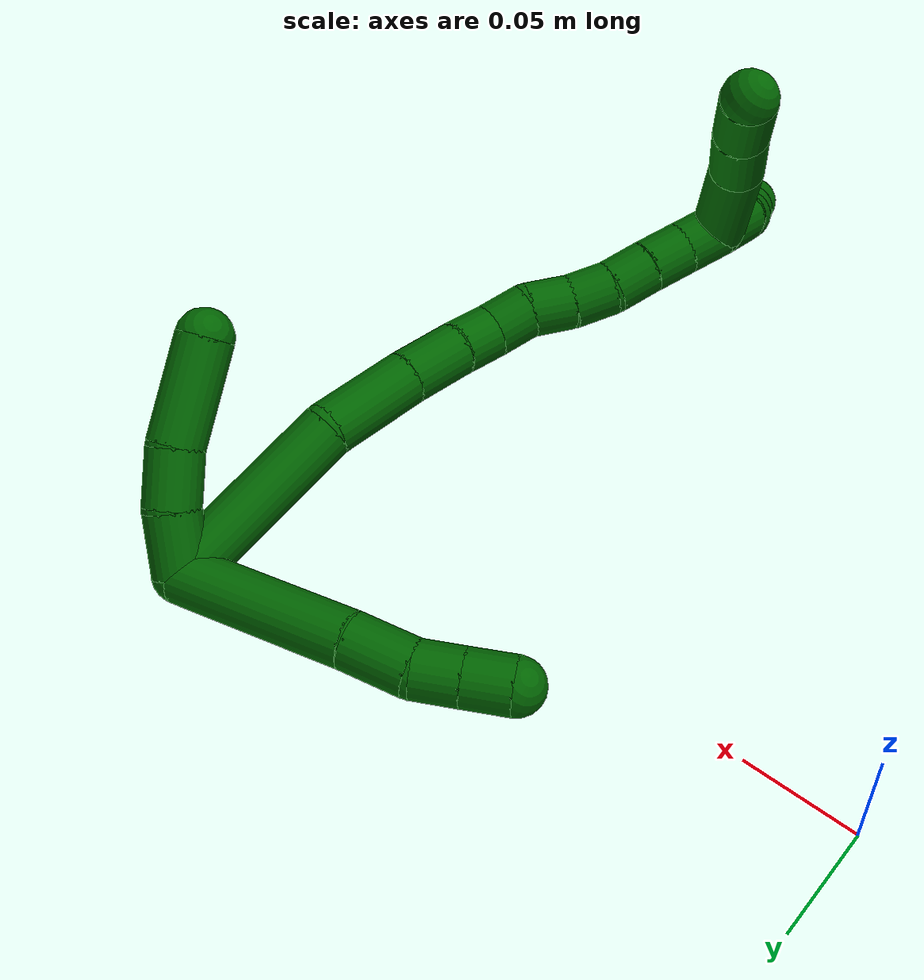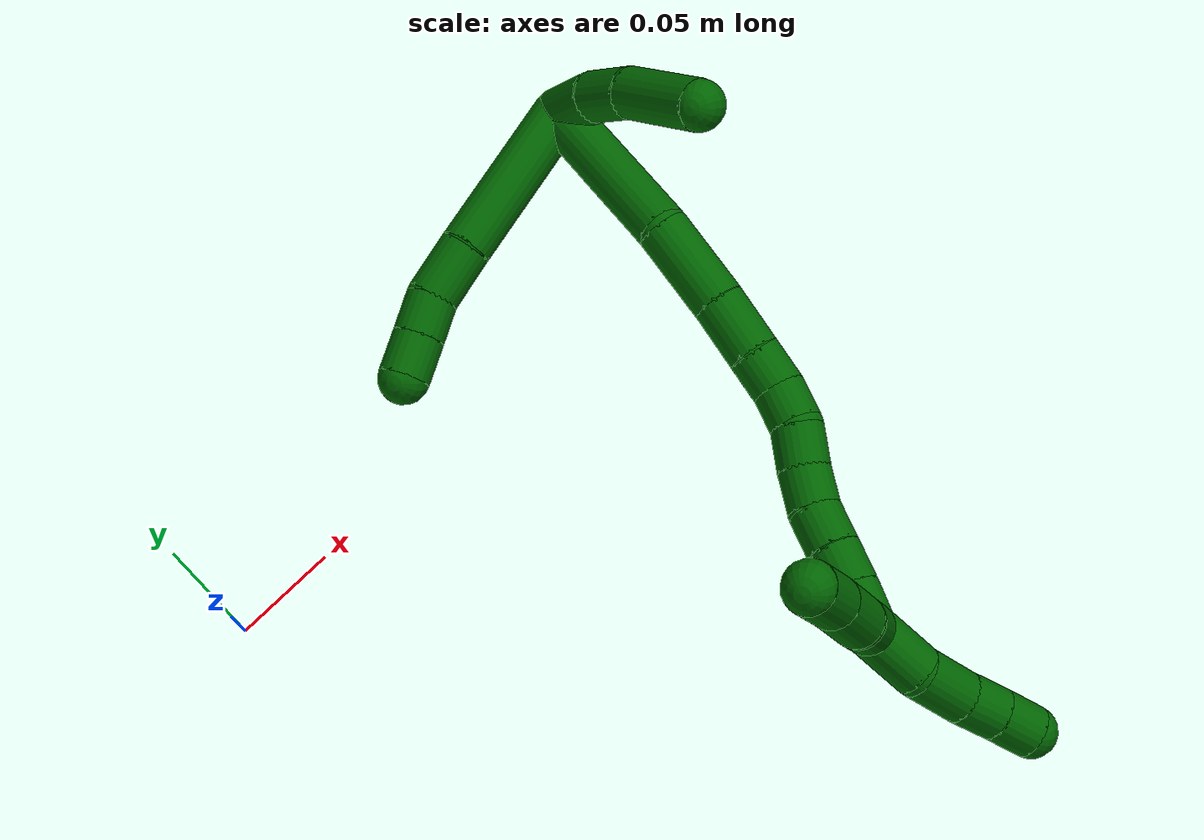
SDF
<sdf version="1.7">
 <world name="default">
  <model name="6">
   <static>0</static>
   <link name="6">
    <collision name="collision-cylinder-e_1_2_8">
     <pose>0.033666 -0.006346 -0.020849 2.84612 0.996291 2.60743</pose>
     <geometry><cylinder><radius>0.0125</radius><length>0.080209</length></cylinder></geometry>
     <surface>
      <friction><ode><mu>1.16</mu><mu2>1.16</mu2><slip1>0</slip1><slip2>0</slip2></ode></friction>
      <contact><ode><kp>1e+06</kp><kd>1</kd><max_vel>0</max_vel><min_depth>0.001</min_depth></ode></contact>
     </surface>
    </collision>
    <visual name="visual-cylinder-e_1_2_8">
     <pose>0.033666 -0.006346 -0.020849 2.84612 0.996291 2.60743</pose>
     <geometry><cylinder><radius>0.0125</radius><length>0.080209</length></cylinder></geometry>
     <material><ambient>0 0.392157 0.003922 1</ambient></material>
    </visual>
    <collision name="collision-cylinder-e_2_8_9">
     <pose>0.079995 -0.015054 -0.047979 2.78192 1.08349 2.55484</pose>
     <geometry><cylinder><radius>0.0125</radius><length>0.028661</length></cylinder></geometry>
     <surface>
      <friction><ode><mu>1.16</mu><mu2>1.16</mu2><slip1>0</slip1><slip2>0</slip2></ode></friction>
      <contact><ode><kp>1e+06</kp><kd>1</kd><max_vel>0</max_vel><min_depth>0.001</min_depth></ode></contact>
     </surface>
    </collision>
    <visual name="visual-cylinder-e_2_8_9">
     <pose>0.079995 -0.015054 -0.047979 2.78192 1.08349 2.55484</pose>
     <geometry><cylinder><radius>0.0125</radius><length>0.028661</length></cylinder></geometry>
     <material><ambient>0 0.392157 0.003922 1</ambient></material>
    </visual>
    <collision name="collision-cylinder-e_3_9_10">
     <pose>0.10065 -0.021587 -0.05881 2.39964 0.91319 1.80204</pose>
     <geometry><cylinder><radius>0.0125</radius><length>0.020198</length></cylinder></geometry>
     <surface>
      <friction><ode><mu>1.16</mu><mu2>1.16</mu2><slip1>0</slip1><slip2>0</slip2></ode></friction>
      <contact><ode><kp>1e+06</kp><kd>1</kd><max_vel>0</max_vel><min_depth>0.001</min_depth></ode></contact>
     </surface>
    </collision>
    <visual name="visual-cylinder-e_3_9_10">
     <pose>0.10065 -0.021587 -0.05881 2.39964 0.91319 1.80204</pose>
     <geometry><cylinder><radius>0.0125</radius><length>0.020198</length></cylinder></geometry>
     <material><ambient>0 0.392157 0.003922 1</ambient></material>
    </visual>
    <collision name="collision-cylinder-e_4_10_6">
     <pose>0.116858 -0.030015 -0.068252 2.42555 0.90258 1.82673</pose>
     <geometry><cylinder><radius>0.0125</radius><length>0.020932</length></cylinder></geometry>
     <surface>
      <friction><ode><mu>1.16</mu><mu2>1.16</mu2><slip1>0</slip1><slip2>0</slip2></ode></friction>
      <contact><ode><kp>1e+06</kp><kd>1</kd><max_vel>0</max_vel><min_depth>0.001</min_depth></ode></contact>
     </surface>
    </collision>
    <visual name="visual-cylinder-e_4_10_6">
     <pose>0.116858 -0.030015 -0.068252 2.42555 0.90258 1.82673</pose>
     <geometry><cylinder><radius>0.0125</radius><length>0.020932</length></cylinder></geometry>
     <material><ambient>0 0.392157 0.003922 1</ambient></material>
    </visual>
    <collision name="collision-cylinder-e_1_2_11">
     <pose>-0.010908 -0.00552 -0.006794 2.45927 -0.89449 -1.8672</pose>
     <geometry><cylinder><radius>0.0125</radius><length>0.027972</length></cylinder></geometry>
     <surface>
      <friction><ode><mu>1.16</mu><mu2>1.16</mu2><slip1>0</slip1><slip2>0</slip2></ode></friction>
      <contact><ode><kp>1e+06</kp><kd>1</kd><max_vel>0</max_vel><min_depth>0.001</min_depth></ode></contact>
     </surface>
    </collision>
    <visual name="visual-cylinder-e_1_2_11">
     <pose>-0.010908 -0.00552 -0.006794 2.45927 -0.89449 -1.8672</pose>
     <geometry><cylinder><radius>0.0125</radius><length>0.027972</length></cylinder></geometry>
     <material><ambient>0 0.392157 0.003922 1</ambient></material>
    </visual>
    <collision name="collision-cylinder-e_2_11_12">
     <pose>-0.030252 -0.018377 -0.019891 2.28056 -0.717334 -1.3692</pose>
     <geometry><cylinder><radius>0.0125</radius><length>0.025668</length></cylinder></geometry>
     <surface>
      <friction><ode><mu>1.16</mu><mu2>1.16</mu2><slip1>0</slip1><slip2>0</slip2></ode></friction>
      <contact><ode><kp>1e+06</kp><kd>1</kd><max_vel>0</max_vel><min_depth>0.001</min_depth></ode></contact>
     </surface>
    </collision>
    <visual name="visual-cylinder-e_2_11_12">
     <pose>-0.030252 -0.018377 -0.019891 2.28056 -0.717334 -1.3692</pose>
     <geometry><cylinder><radius>0.0125</radius><length>0.025668</length></cylinder></geometry>
     <material><ambient>0 0.392157 0.003922 1</ambient></material>
    </visual>
    <collision name="collision-cylinder-e_3_12_5">
     <pose>-0.050478 -0.042039 -0.037672 2.1836 -0.533528 -0.968788</pose>
     <geometry><cylinder><radius>0.0125</radius><length>0.046359</length></cylinder></geometry>
     <surface>
      <friction><ode><mu>1.16</mu><mu2>1.16</mu2><slip1>0</slip1><slip2>0</slip2></ode></friction>
      <contact><ode><kp>1e+06</kp><kd>1</kd><max_vel>0</max_vel><min_depth>0.001</min_depth></ode></contact>
     </surface>
    </collision>
    <visual name="visual-cylinder-e_3_12_5">
     <pose>-0.050478 -0.042039 -0.037672 2.1836 -0.533528 -0.968788</pose>
     <geometry><cylinder><radius>0.0125</radius><length>0.046359</length></cylinder></geometry>
     <material><ambient>0 0.392157 0.003922 1</ambient></material>
    </visual>
    <collision name="collision-cylinder-e_1_2_13">
     <pose>-0.001005 -0.039496 -0.016847 1.97397 -0.023398 -0.035416</pose>
     <geometry><cylinder><radius>0.0125</radius><length>0.085901</length></cylinder></geometry>
     <surface>
      <friction><ode><mu>1.16</mu><mu2>1.16</mu2><slip1>0</slip1><slip2>0</slip2></ode></friction>
      <contact><ode><kp>1e+06</kp><kd>1</kd><max_vel>0</max_vel><min_depth>0.001</min_depth></ode></contact>
     </surface>
    </collision>
    <visual name="visual-cylinder-e_1_2_13">
     <pose>-0.001005 -0.039496 -0.016847 1.97397 -0.023398 -0.035416</pose>
     <geometry><cylinder><radius>0.0125</radius><length>0.085901</length></cylinder></geometry>
     <material><ambient>0 0.392157 0.003922 1</ambient></material>
    </visual>
    <collision name="collision-cylinder-e_2_13_14">
     <pose>0.001157 -0.100461 -0.037219 1.73355 0.144539 0.170095</pose>
     <geometry><cylinder><radius>0.0125</radius><length>0.043972</length></cylinder></geometry>
     <surface>
      <friction><ode><mu>1.16</mu><mu2>1.16</mu2><slip1>0</slip1><slip2>0</slip2></ode></friction>
      <contact><ode><kp>1e+06</kp><kd>1</kd><max_vel>0</max_vel><min_depth>0.001</min_depth></ode></contact>
     </surface>
    </collision>
    <visual name="visual-cylinder-e_2_13_14">
     <pose>0.001157 -0.100461 -0.037219 1.73355 0.144539 0.170095</pose>
     <geometry><cylinder><radius>0.0125</radius><length>0.043972</length></cylinder></geometry>
     <material><ambient>0 0.392157 0.003922 1</ambient></material>
    </visual>
    <collision name="collision-cylinder-e_3_14_15">
     <pose>0.00717 -0.135992 -0.042871 1.72093 0.197525 0.229391</pose>
     <geometry><cylinder><radius>0.0125</radius><length>0.029008</length></cylinder></geometry>
     <surface>
      <friction><ode><mu>1.16</mu><mu2>1.16</mu2><slip1>0</slip1><slip2>0</slip2></ode></friction>
      <contact><ode><kp>1e+06</kp><kd>1</kd><max_vel>0</max_vel><min_depth>0.001</min_depth></ode></contact>
     </surface>
    </collision>
    <visual name="visual-cylinder-e_3_14_15">
     <pose>0.00717 -0.135992 -0.042871 1.72093 0.197525 0.229391</pose>
     <geometry><cylinder><radius>0.0125</radius><length>0.029008</length></cylinder></geometry>
     <material><ambient>0 0.392157 0.003922 1</ambient></material>
    </visual>
    <collision name="collision-cylinder-e_4_15_16">
     <pose>0.012257 -0.159838 -0.045728 1.64518 0.224464 0.241651</pose>
     <geometry><cylinder><radius>0.0125</radius><length>0.020127</length></cylinder></geometry>
     <surface>
      <friction><ode><mu>1.16</mu><mu2>1.16</mu2><slip1>0</slip1><slip2>0</slip2></ode></friction>
      <contact><ode><kp>1e+06</kp><kd>1</kd><max_vel>0</max_vel><min_depth>0.001</min_depth></ode></contact>
     </surface>
    </collision>
    <visual name="visual-cylinder-e_4_15_16">
     <pose>0.012257 -0.159838 -0.045728 1.64518 0.224464 0.241651</pose>
     <geometry><cylinder><radius>0.0125</radius><length>0.020127</length></cylinder></geometry>
     <material><ambient>0 0.392157 0.003922 1</ambient></material>
    </visual>
    <collision name="collision-cylinder-e_5_16_17">
     <pose>0.016836 -0.178515 -0.050528 2.0001 0.234773 0.363317</pose>
     <geometry><cylinder><radius>0.0125</radius><length>0.020111</length></cylinder></geometry>
     <surface>
      <friction><ode><mu>1.16</mu><mu2>1.16</mu2><slip1>0</slip1><slip2>0</slip2></ode></friction>
      <contact><ode><kp>1e+06</kp><kd>1</kd><max_vel>0</max_vel><min_depth>0.001</min_depth></ode></contact>
     </surface>
    </collision>
    <visual name="visual-cylinder-e_5_16_17">
     <pose>0.016836 -0.178515 -0.050528 2.0001 0.234773 0.363317</pose>
     <geometry><cylinder><radius>0.0125</radius><length>0.020111</length></cylinder></geometry>
     <material><ambient>0 0.392157 0.003922 1</ambient></material>
    </visual>
    <collision name="collision-cylinder-e_6_17_18">
     <pose>0.024649 -0.195445 -0.058126 1.98432 0.557605 0.826042</pose>
     <geometry><cylinder><radius>0.0125</radius><length>0.020689</length></cylinder></geometry>
     <surface>
      <friction><ode><mu>1.16</mu><mu2>1.16</mu2><slip1>0</slip1><slip2>0</slip2></ode></friction>
      <contact><ode><kp>1e+06</kp><kd>1</kd><max_vel>0</max_vel><min_depth>0.001</min_depth></ode></contact>
     </surface>
    </collision>
    <visual name="visual-cylinder-e_6_17_18">
     <pose>0.024649 -0.195445 -0.058126 1.98432 0.557605 0.826042</pose>
     <geometry><cylinder><radius>0.0125</radius><length>0.020689</length></cylinder></geometry>
     <material><ambient>0 0.392157 0.003922 1</ambient></material>
    </visual>
    <collision name="collision-cylinder-e_7_18_19">
     <pose>0.034216 -0.21153 -0.065984 2.06458 0.421127 0.687155</pose>
     <geometry><cylinder><radius>0.0125</radius><length>0.020026</length></cylinder></geometry>
     <surface>
      <friction><ode><mu>1.16</mu><mu2>1.16</mu2><slip1>0</slip1><slip2>0</slip2></ode></friction>
      <contact><ode><kp>1e+06</kp><kd>1</kd><max_vel>0</max_vel><min_depth>0.001</min_depth></ode></contact>
     </surface>
    </collision>
    <visual name="visual-cylinder-e_7_18_19">
     <pose>0.034216 -0.21153 -0.065984 2.06458 0.421127 0.687155</pose>
     <geometry><cylinder><radius>0.0125</radius><length>0.020026</length></cylinder></geometry>
     <material><ambient>0 0.392157 0.003922 1</ambient></material>
    </visual>
    <collision name="collision-cylinder-e_8_19_20">
     <pose>0.040734 -0.228528 -0.074251 1.98499 0.243018 0.36987</pose>
     <geometry><cylinder><radius>0.0125</radius><length>0.02015</length></cylinder></geometry>
     <surface>
      <friction><ode><mu>1.16</mu><mu2>1.16</mu2><slip1>0</slip1><slip2>0</slip2></ode></friction>
      <contact><ode><kp>1e+06</kp><kd>1</kd><max_vel>0</max_vel><min_depth>0.001</min_depth></ode></contact>
     </surface>
    </collision>
    <visual name="visual-cylinder-e_8_19_20">
     <pose>0.040734 -0.228528 -0.074251 1.98499 0.243018 0.36987</pose>
     <geometry><cylinder><radius>0.0125</radius><length>0.02015</length></cylinder></geometry>
     <material><ambient>0 0.392157 0.003922 1</ambient></material>
    </visual>
    <collision name="collision-cylinder-e_9_20_21">
     <pose>0.045808 -0.246459 -0.081706 1.9444 0.268127 0.390439</pose>
     <geometry><cylinder><radius>0.0125</radius><length>0.020003</length></cylinder></geometry>
     <surface>
      <friction><ode><mu>1.16</mu><mu2>1.16</mu2><slip1>0</slip1><slip2>0</slip2></ode></friction>
      <contact><ode><kp>1e+06</kp><kd>1</kd><max_vel>0</max_vel><min_depth>0.001</min_depth></ode></contact>
     </surface>
    </collision>
    <visual name="visual-cylinder-e_9_20_21">
     <pose>0.045808 -0.246459 -0.081706 1.9444 0.268127 0.390439</pose>
     <geometry><cylinder><radius>0.0125</radius><length>0.020003</length></cylinder></geometry>
     <material><ambient>0 0.392157 0.003922 1</ambient></material>
    </visual>
    <collision name="collision-cylinder-e_10_21_1">
     <pose>0.051218 -0.264106 -0.089392 2.01885 0.279484 0.440099</pose>
     <geometry><cylinder><radius>0.0125</radius><length>0.020012</length></cylinder></geometry>
     <surface>
      <friction><ode><mu>1.16</mu><mu2>1.16</mu2><slip1>0</slip1><slip2>0</slip2></ode></friction>
      <contact><ode><kp>1e+06</kp><kd>1</kd><max_vel>0</max_vel><min_depth>0.001</min_depth></ode></contact>
     </surface>
    </collision>
    <visual name="visual-cylinder-e_10_21_1">
     <pose>0.051218 -0.264106 -0.089392 2.01885 0.279484 0.440099</pose>
     <geometry><cylinder><radius>0.0125</radius><length>0.020012</length></cylinder></geometry>
     <material><ambient>0 0.392157 0.003922 1</ambient></material>
    </visual>
    <collision name="collision-cylinder-e_1_1_22">
     <pose>0.055777 -0.287334 -0.088101 1.21215 0.115206 0.079894</pose>
     <geometry><cylinder><radius>0.0125</radius><length>0.031306</length></cylinder></geometry>
     <surface>
      <friction><ode><mu>1.16</mu><mu2>1.16</mu2><slip1>0</slip1><slip2>0</slip2></ode></friction>
      <contact><ode><kp>1e+06</kp><kd>1</kd><max_vel>0</max_vel><min_depth>0.001</min_depth></ode></contact>
     </surface>
    </collision>
    <visual name="visual-cylinder-e_1_1_22">
     <pose>0.055777 -0.287334 -0.088101 1.21215 0.115206 0.079894</pose>
     <geometry><cylinder><radius>0.0125</radius><length>0.031306</length></cylinder></geometry>
     <material><ambient>0 0.392157 0.003922 1</ambient></material>
    </visual>
    <collision name="collision-cylinder-e_2_22_23">
     <pose>0.058253 -0.313133 -0.074457 0.941336 0.048622 0.024743</pose>
     <geometry><cylinder><radius>0.0125</radius><length>0.027842</length></cylinder></geometry>
     <surface>
      <friction><ode><mu>1.16</mu><mu2>1.16</mu2><slip1>0</slip1><slip2>0</slip2></ode></friction>
      <contact><ode><kp>1e+06</kp><kd>1</kd><max_vel>0</max_vel><min_depth>0.001</min_depth></ode></contact>
     </surface>
    </collision>
    <visual name="visual-cylinder-e_2_22_23">
     <pose>0.058253 -0.313133 -0.074457 0.941336 0.048622 0.024743</pose>
     <geometry><cylinder><radius>0.0125</radius><length>0.027842</length></cylinder></geometry>
     <material><ambient>0 0.392157 0.003922 1</ambient></material>
    </visual>
    <collision name="collision-cylinder-e_3_23_24">
     <pose>0.058352 -0.332953 -0.06076 0.999797 -0.056575 -0.030905</pose>
     <geometry><cylinder><radius>0.0125</radius><length>0.020429</length></cylinder></geometry>
     <surface>
      <friction><ode><mu>1.16</mu><mu2>1.16</mu2><slip1>0</slip1><slip2>0</slip2></ode></friction>
      <contact><ode><kp>1e+06</kp><kd>1</kd><max_vel>0</max_vel><min_depth>0.001</min_depth></ode></contact>
     </surface>
    </collision>
    <visual name="visual-cylinder-e_3_23_24">
     <pose>0.058352 -0.332953 -0.06076 0.999797 -0.056575 -0.030905</pose>
     <geometry><cylinder><radius>0.0125</radius><length>0.020429</length></cylinder></geometry>
     <material><ambient>0 0.392157 0.003922 1</ambient></material>
    </visual>
    <collision name="collision-cylinder-e_4_24_4">
     <pose>0.057309 -0.350358 -0.05013 1.04521 -0.045598 -0.026269</pose>
     <geometry><cylinder><radius>0.0125</radius><length>0.020424</length></cylinder></geometry>
     <surface>
      <friction><ode><mu>1.16</mu><mu2>1.16</mu2><slip1>0</slip1><slip2>0</slip2></ode></friction>
      <contact><ode><kp>1e+06</kp><kd>1</kd><max_vel>0</max_vel><min_depth>0.001</min_depth></ode></contact>
     </surface>
    </collision>
    <visual name="visual-cylinder-e_4_24_4">
     <pose>0.057309 -0.350358 -0.05013 1.04521 -0.045598 -0.026269</pose>
     <geometry><cylinder><radius>0.0125</radius><length>0.020424</length></cylinder></geometry>
     <material><ambient>0 0.392157 0.003922 1</ambient></material>
    </visual>
    <collision name="collision-cylinder-e_1_1_25">
     <pose>0.047073 -0.26975 -0.112882 -2.98633 -0.339377 2.28925</pose>
     <geometry><cylinder><radius>0.0125</radius><length>0.041482</length></cylinder></geometry>
     <surface>
      <friction><ode><mu>1.16</mu><mu2>1.16</mu2><slip1>0</slip1><slip2>0</slip2></ode></friction>
      <contact><ode><kp>1e+06</kp><kd>1</kd><max_vel>0</max_vel><min_depth>0.001</min_depth></ode></contact>
     </surface>
    </collision>
    <visual name="visual-cylinder-e_1_1_25">
     <pose>0.047073 -0.26975 -0.112882 -2.98633 -0.339377 2.28925</pose>
     <geometry><cylinder><radius>0.0125</radius><length>0.041482</length></cylinder></geometry>
     <material><ambient>0 0.392157 0.003922 1</ambient></material>
    </visual>
    <collision name="collision-cylinder-e_2_25_26">
     <pose>0.035572 -0.259989 -0.145645 -2.67697 -0.296661 1.12667</pose>
     <geometry><cylinder><radius>0.0125</radius><length>0.031443</length></cylinder></geometry>
     <surface>
      <friction><ode><mu>1.16</mu><mu2>1.16</mu2><slip1>0</slip1><slip2>0</slip2></ode></friction>
      <contact><ode><kp>1e+06</kp><kd>1</kd><max_vel>0</max_vel><min_depth>0.001</min_depth></ode></contact>
     </surface>
    </collision>
    <visual name="visual-cylinder-e_2_25_26">
     <pose>0.035572 -0.259989 -0.145645 -2.67697 -0.296661 1.12667</pose>
     <geometry><cylinder><radius>0.0125</radius><length>0.031443</length></cylinder></geometry>
     <material><ambient>0 0.392157 0.003922 1</ambient></material>
    </visual>
    <collision name="collision-cylinder-e_3_26_3">
     <pose>0.027518 -0.247827 -0.170997 -2.71421 -0.25833 1.07871</pose>
     <geometry><cylinder><radius>0.0125</radius><length>0.027075</length></cylinder></geometry>
     <surface>
      <friction><ode><mu>1.16</mu><mu2>1.16</mu2><slip1>0</slip1><slip2>0</slip2></ode></friction>
      <contact><ode><kp>1e+06</kp><kd>1</kd><max_vel>0</max_vel><min_depth>0.001</min_depth></ode></contact>
     </surface>
    </collision>
    <visual name="visual-cylinder-e_3_26_3">
     <pose>0.027518 -0.247827 -0.170997 -2.71421 -0.25833 1.07871</pose>
     <geometry><cylinder><radius>0.0125</radius><length>0.027075</length></cylinder></geometry>
     <material><ambient>0 0.392157 0.003922 1</ambient></material>
    </visual>
    <collision name="collision-sphere-3">
     <pose>0.02406 -0.242402 -0.182908 0 -0 0</pose>
     <geometry><sphere><radius>0.0125</radius></sphere></geometry>
     <surface>
      <friction><ode><mu>1.16</mu><mu2>1.16</mu2><slip1>0</slip1><slip2>0</slip2></ode></friction>
      <contact><ode><kp>1e+06</kp><kd>1</kd><max_vel>0</max_vel><min_depth>0.001</min_depth></ode></contact>
     </surface>
    </collision>
    <visual name="visual-sphere-3">
     <pose>0.02406 -0.242402 -0.182908 0 -0 0</pose>
     <geometry><sphere><radius>0.0125</radius></sphere></geometry>
     <material><ambient>0 0.392157 0.003922 1</ambient></material>
    </visual>
    <collision name="collision-sphere-26">
     <pose>0.030977 -0.253252 -0.159086 0 -0 0</pose>
     <geometry><sphere><radius>0.0125</radius></sphere></geometry>
     <surface>
      <friction><ode><mu>1.16</mu><mu2>1.16</mu2><slip1>0</slip1><slip2>0</slip2></ode></friction>
      <contact><ode><kp>1e+06</kp><kd>1</kd><max_vel>0</max_vel><min_depth>0.001</min_depth></ode></contact>
     </surface>
    </collision>
    <visual name="visual-sphere-26">
     <pose>0.030977 -0.253252 -0.159086 0 -0 0</pose>
     <geometry><sphere><radius>0.0125</radius></sphere></geometry>
     <material><ambient>0 0.392157 0.003922 1</ambient></material>
    </visual>
    <collision name="collision-sphere-25">
     <pose>0.040168 -0.266726 -0.132205 0 -0 0</pose>
     <geometry><sphere><radius>0.0125</radius></sphere></geometry>
     <surface>
      <friction><ode><mu>1.16</mu><mu2>1.16</mu2><slip1>0</slip1><slip2>0</slip2></ode></friction>
      <contact><ode><kp>1e+06</kp><kd>1</kd><max_vel>0</max_vel><min_depth>0.001</min_depth></ode></contact>
     </surface>
    </collision>
    <visual name="visual-sphere-25">
     <pose>0.040168 -0.266726 -0.132205 0 -0 0</pose>
     <geometry><sphere><radius>0.0125</radius></sphere></geometry>
     <material><ambient>0 0.392157 0.003922 1</ambient></material>
    </visual>
    <collision name="collision-sphere-4">
     <pose>0.056843 -0.359182 -0.045012 0 -0 0</pose>
     <geometry><sphere><radius>0.0125</radius></sphere></geometry>
     <surface>
      <friction><ode><mu>1.16</mu><mu2>1.16</mu2><slip1>0</slip1><slip2>0</slip2></ode></friction>
      <contact><ode><kp>1e+06</kp><kd>1</kd><max_vel>0</max_vel><min_depth>0.001</min_depth></ode></contact>
     </surface>
    </collision>
    <visual name="visual-sphere-4">
     <pose>0.056843 -0.359182 -0.045012 0 -0 0</pose>
     <geometry><sphere><radius>0.0125</radius></sphere></geometry>
     <material><ambient>0 0.392157 0.003922 1</ambient></material>
    </visual>
    <collision name="collision-sphere-24">
     <pose>0.057774 -0.341533 -0.055248 0 -0 0</pose>
     <geometry><sphere><radius>0.0125</radius></sphere></geometry>
     <surface>
      <friction><ode><mu>1.16</mu><mu2>1.16</mu2><slip1>0</slip1><slip2>0</slip2></ode></friction>
      <contact><ode><kp>1e+06</kp><kd>1</kd><max_vel>0</max_vel><min_depth>0.001</min_depth></ode></contact>
     </surface>
    </collision>
    <visual name="visual-sphere-24">
     <pose>0.057774 -0.341533 -0.055248 0 -0 0</pose>
     <geometry><sphere><radius>0.0125</radius></sphere></geometry>
     <material><ambient>0 0.392157 0.003922 1</ambient></material>
    </visual>
    <collision name="collision-sphere-23">
     <pose>0.05893 -0.324373 -0.066272 0 -0 0</pose>
     <geometry><sphere><radius>0.0125</radius></sphere></geometry>
     <surface>
      <friction><ode><mu>1.16</mu><mu2>1.16</mu2><slip1>0</slip1><slip2>0</slip2></ode></friction>
      <contact><ode><kp>1e+06</kp><kd>1</kd><max_vel>0</max_vel><min_depth>0.001</min_depth></ode></contact>
     </surface>
    </collision>
    <visual name="visual-sphere-23">
     <pose>0.05893 -0.324373 -0.066272 0 -0 0</pose>
     <geometry><sphere><radius>0.0125</radius></sphere></geometry>
     <material><ambient>0 0.392157 0.003922 1</ambient></material>
    </visual>
    <collision name="collision-sphere-22">
     <pose>0.057576 -0.301894 -0.082643 0 -0 0</pose>
     <geometry><sphere><radius>0.0125</radius></sphere></geometry>
     <surface>
      <friction><ode><mu>1.16</mu><mu2>1.16</mu2><slip1>0</slip1><slip2>0</slip2></ode></friction>
      <contact><ode><kp>1e+06</kp><kd>1</kd><max_vel>0</max_vel><min_depth>0.001</min_depth></ode></contact>
     </surface>
    </collision>
    <visual name="visual-sphere-22">
     <pose>0.057576 -0.301894 -0.082643 0 -0 0</pose>
     <geometry><sphere><radius>0.0125</radius></sphere></geometry>
     <material><ambient>0 0.392157 0.003922 1</ambient></material>
    </visual>
    <collision name="collision-sphere-1">
     <pose>0.053978 -0.272775 -0.093559 0 -0 0</pose>
     <geometry><sphere><radius>0.0125</radius></sphere></geometry>
     <surface>
      <friction><ode><mu>1.16</mu><mu2>1.16</mu2><slip1>0</slip1><slip2>0</slip2></ode></friction>
      <contact><ode><kp>1e+06</kp><kd>1</kd><max_vel>0</max_vel><min_depth>0.001</min_depth></ode></contact>
     </surface>
    </collision>
    <visual name="visual-sphere-1">
     <pose>0.053978 -0.272775 -0.093559 0 -0 0</pose>
     <geometry><sphere><radius>0.0125</radius></sphere></geometry>
     <material><ambient>0 0.392157 0.003922 1</ambient></material>
    </visual>
    <collision name="collision-sphere-21">
     <pose>0.048457 -0.255438 -0.085226 0 -0 0</pose>
     <geometry><sphere><radius>0.0125</radius></sphere></geometry>
     <surface>
      <friction><ode><mu>1.16</mu><mu2>1.16</mu2><slip1>0</slip1><slip2>0</slip2></ode></friction>
      <contact><ode><kp>1e+06</kp><kd>1</kd><max_vel>0</max_vel><min_depth>0.001</min_depth></ode></contact>
     </surface>
    </collision>
    <visual name="visual-sphere-21">
     <pose>0.048457 -0.255438 -0.085226 0 -0 0</pose>
     <geometry><sphere><radius>0.0125</radius></sphere></geometry>
     <material><ambient>0 0.392157 0.003922 1</ambient></material>
    </visual>
    <collision name="collision-sphere-11">
     <pose>-0.021815 -0.011041 -0.013588 0 -0 0</pose>
     <geometry><sphere><radius>0.0125</radius></sphere></geometry>
     <surface>
      <friction><ode><mu>1.16</mu><mu2>1.16</mu2><slip1>0</slip1><slip2>0</slip2></ode></friction>
      <contact><ode><kp>1e+06</kp><kd>1</kd><max_vel>0</max_vel><min_depth>0.001</min_depth></ode></contact>
     </surface>
    </collision>
    <visual name="visual-sphere-11">
     <pose>-0.021815 -0.011041 -0.013588 0 -0 0</pose>
     <geometry><sphere><radius>0.0125</radius></sphere></geometry>
     <material><ambient>0 0.392157 0.003922 1</ambient></material>
    </visual>
    <collision name="collision-sphere-6">
     <pose>0.125073 -0.034271 -0.073144 0 -0 0</pose>
     <geometry><sphere><radius>0.0125</radius></sphere></geometry>
     <surface>
      <friction><ode><mu>1.16</mu><mu2>1.16</mu2><slip1>0</slip1><slip2>0</slip2></ode></friction>
      <contact><ode><kp>1e+06</kp><kd>1</kd><max_vel>0</max_vel><min_depth>0.001</min_depth></ode></contact>
     </surface>
    </collision>
    <visual name="visual-sphere-6">
     <pose>0.125073 -0.034271 -0.073144 0 -0 0</pose>
     <geometry><sphere><radius>0.0125</radius></sphere></geometry>
     <material><ambient>0 0.392157 0.003922 1</ambient></material>
    </visual>
    <collision name="collision-sphere-10">
     <pose>0.108643 -0.025758 -0.06336 0 -0 0</pose>
     <geometry><sphere><radius>0.0125</radius></sphere></geometry>
     <surface>
      <friction><ode><mu>1.16</mu><mu2>1.16</mu2><slip1>0</slip1><slip2>0</slip2></ode></friction>
      <contact><ode><kp>1e+06</kp><kd>1</kd><max_vel>0</max_vel><min_depth>0.001</min_depth></ode></contact>
     </surface>
    </collision>
    <visual name="visual-sphere-10">
     <pose>0.108643 -0.025758 -0.06336 0 -0 0</pose>
     <geometry><sphere><radius>0.0125</radius></sphere></geometry>
     <material><ambient>0 0.392157 0.003922 1</ambient></material>
    </visual>
    <collision name="collision-sphere-9">
     <pose>0.092657 -0.017416 -0.05426 0 -0 0</pose>
     <geometry><sphere><radius>0.0125</radius></sphere></geometry>
     <surface>
      <friction><ode><mu>1.16</mu><mu2>1.16</mu2><slip1>0</slip1><slip2>0</slip2></ode></friction>
      <contact><ode><kp>1e+06</kp><kd>1</kd><max_vel>0</max_vel><min_depth>0.001</min_depth></ode></contact>
     </surface>
    </collision>
    <visual name="visual-sphere-9">
     <pose>0.092657 -0.017416 -0.05426 0 -0 0</pose>
     <geometry><sphere><radius>0.0125</radius></sphere></geometry>
     <material><ambient>0 0.392157 0.003922 1</ambient></material>
    </visual>
    <collision name="collision-sphere-2">
     <geometry><sphere><radius>0.0125</radius></sphere></geometry>
     <surface>
      <friction><ode><mu>1.16</mu><mu2>1.16</mu2><slip1>0</slip1><slip2>0</slip2></ode></friction>
      <contact><ode><kp>1e+06</kp><kd>1</kd><max_vel>0</max_vel><min_depth>0.001</min_depth></ode></contact>
     </surface>
    </collision>
    <visual name="visual-sphere-2">
     <geometry><sphere><radius>0.0125</radius></sphere></geometry>
     <material><ambient>0 0.392157 0.003922 1</ambient></material>
    </visual>
    <collision name="collision-sphere-19">
     <pose>0.038309 -0.219576 -0.070315 0 -0 0</pose>
     <geometry><sphere><radius>0.0125</radius></sphere></geometry>
     <surface>
      <friction><ode><mu>1.16</mu><mu2>1.16</mu2><slip1>0</slip1><slip2>0</slip2></ode></friction>
      <contact><ode><kp>1e+06</kp><kd>1</kd><max_vel>0</max_vel><min_depth>0.001</min_depth></ode></contact>
     </surface>
    </collision>
    <visual name="visual-sphere-19">
     <pose>0.038309 -0.219576 -0.070315 0 -0 0</pose>
     <geometry><sphere><radius>0.0125</radius></sphere></geometry>
     <material><ambient>0 0.392157 0.003922 1</ambient></material>
    </visual>
    <collision name="collision-sphere-8">
     <pose>0.067332 -0.012692 -0.041698 0 -0 0</pose>
     <geometry><sphere><radius>0.0125</radius></sphere></geometry>
     <surface>
      <friction><ode><mu>1.16</mu><mu2>1.16</mu2><slip1>0</slip1><slip2>0</slip2></ode></friction>
      <contact><ode><kp>1e+06</kp><kd>1</kd><max_vel>0</max_vel><min_depth>0.001</min_depth></ode></contact>
     </surface>
    </collision>
    <visual name="visual-sphere-8">
     <pose>0.067332 -0.012692 -0.041698 0 -0 0</pose>
     <geometry><sphere><radius>0.0125</radius></sphere></geometry>
     <material><ambient>0 0.392157 0.003922 1</ambient></material>
    </visual>
    <collision name="collision-sphere-12">
     <pose>-0.038689 -0.025712 -0.026193 0 -0 0</pose>
     <geometry><sphere><radius>0.0125</radius></sphere></geometry>
     <surface>
      <friction><ode><mu>1.16</mu><mu2>1.16</mu2><slip1>0</slip1><slip2>0</slip2></ode></friction>
      <contact><ode><kp>1e+06</kp><kd>1</kd><max_vel>0</max_vel><min_depth>0.001</min_depth></ode></contact>
     </surface>
    </collision>
    <visual name="visual-sphere-12">
     <pose>-0.038689 -0.025712 -0.026193 0 -0 0</pose>
     <geometry><sphere><radius>0.0125</radius></sphere></geometry>
     <material><ambient>0 0.392157 0.003922 1</ambient></material>
    </visual>
    <collision name="collision-sphere-5">
     <pose>-0.062266 -0.058365 -0.049152 0 -0 0</pose>
     <geometry><sphere><radius>0.0125</radius></sphere></geometry>
     <surface>
      <friction><ode><mu>1.16</mu><mu2>1.16</mu2><slip1>0</slip1><slip2>0</slip2></ode></friction>
      <contact><ode><kp>1e+06</kp><kd>1</kd><max_vel>0</max_vel><min_depth>0.001</min_depth></ode></contact>
     </surface>
    </collision>
    <visual name="visual-sphere-5">
     <pose>-0.062266 -0.058365 -0.049152 0 -0 0</pose>
     <geometry><sphere><radius>0.0125</radius></sphere></geometry>
     <material><ambient>0 0.392157 0.003922 1</ambient></material>
    </visual>
    <collision name="collision-sphere-13">
     <pose>-0.00201 -0.078992 -0.033693 0 -0 0</pose>
     <geometry><sphere><radius>0.0125</radius></sphere></geometry>
     <surface>
      <friction><ode><mu>1.16</mu><mu2>1.16</mu2><slip1>0</slip1><slip2>0</slip2></ode></friction>
      <contact><ode><kp>1e+06</kp><kd>1</kd><max_vel>0</max_vel><min_depth>0.001</min_depth></ode></contact>
     </surface>
    </collision>
    <visual name="visual-sphere-13">
     <pose>-0.00201 -0.078992 -0.033693 0 -0 0</pose>
     <geometry><sphere><radius>0.0125</radius></sphere></geometry>
     <material><ambient>0 0.392157 0.003922 1</ambient></material>
    </visual>
    <collision name="collision-sphere-14">
     <pose>0.004324 -0.12193 -0.040744 0 -0 0</pose>
     <geometry><sphere><radius>0.0125</radius></sphere></geometry>
     <surface>
      <friction><ode><mu>1.16</mu><mu2>1.16</mu2><slip1>0</slip1><slip2>0</slip2></ode></friction>
      <contact><ode><kp>1e+06</kp><kd>1</kd><max_vel>0</max_vel><min_depth>0.001</min_depth></ode></contact>
     </surface>
    </collision>
    <visual name="visual-sphere-14">
     <pose>0.004324 -0.12193 -0.040744 0 -0 0</pose>
     <geometry><sphere><radius>0.0125</radius></sphere></geometry>
     <material><ambient>0 0.392157 0.003922 1</ambient></material>
    </visual>
    <collision name="collision-sphere-15">
     <pose>0.010017 -0.150054 -0.044999 0 -0 0</pose>
     <geometry><sphere><radius>0.0125</radius></sphere></geometry>
     <surface>
      <friction><ode><mu>1.16</mu><mu2>1.16</mu2><slip1>0</slip1><slip2>0</slip2></ode></friction>
      <contact><ode><kp>1e+06</kp><kd>1</kd><max_vel>0</max_vel><min_depth>0.001</min_depth></ode></contact>
     </surface>
    </collision>
    <visual name="visual-sphere-15">
     <pose>0.010017 -0.150054 -0.044999 0 -0 0</pose>
     <geometry><sphere><radius>0.0125</radius></sphere></geometry>
     <material><ambient>0 0.392157 0.003922 1</ambient></material>
    </visual>
    <collision name="collision-sphere-16">
     <pose>0.014497 -0.169623 -0.046457 0 -0 0</pose>
     <geometry><sphere><radius>0.0125</radius></sphere></geometry>
     <surface>
      <friction><ode><mu>1.16</mu><mu2>1.16</mu2><slip1>0</slip1><slip2>0</slip2></ode></friction>
      <contact><ode><kp>1e+06</kp><kd>1</kd><max_vel>0</max_vel><min_depth>0.001</min_depth></ode></contact>
     </surface>
    </collision>
    <visual name="visual-sphere-16">
     <pose>0.014497 -0.169623 -0.046457 0 -0 0</pose>
     <geometry><sphere><radius>0.0125</radius></sphere></geometry>
     <material><ambient>0 0.392157 0.003922 1</ambient></material>
    </visual>
    <collision name="collision-sphere-17">
     <pose>0.019175 -0.187407 -0.054598 0 -0 0</pose>
     <geometry><sphere><radius>0.0125</radius></sphere></geometry>
     <surface>
      <friction><ode><mu>1.16</mu><mu2>1.16</mu2><slip1>0</slip1><slip2>0</slip2></ode></friction>
      <contact><ode><kp>1e+06</kp><kd>1</kd><max_vel>0</max_vel><min_depth>0.001</min_depth></ode></contact>
     </surface>
    </collision>
    <visual name="visual-sphere-17">
     <pose>0.019175 -0.187407 -0.054598 0 -0 0</pose>
     <geometry><sphere><radius>0.0125</radius></sphere></geometry>
     <material><ambient>0 0.392157 0.003922 1</ambient></material>
    </visual>
    <collision name="collision-sphere-18">
     <pose>0.030123 -0.203483 -0.061653 0 -0 0</pose>
     <geometry><sphere><radius>0.0125</radius></sphere></geometry>
     <surface>
      <friction><ode><mu>1.16</mu><mu2>1.16</mu2><slip1>0</slip1><slip2>0</slip2></ode></friction>
      <contact><ode><kp>1e+06</kp><kd>1</kd><max_vel>0</max_vel><min_depth>0.001</min_depth></ode></contact>
     </surface>
    </collision>
    <visual name="visual-sphere-18">
     <pose>0.030123 -0.203483 -0.061653 0 -0 0</pose>
     <geometry><sphere><radius>0.0125</radius></sphere></geometry>
     <material><ambient>0 0.392157 0.003922 1</ambient></material>
    </visual>
    <collision name="collision-sphere-20">
     <pose>0.043158 -0.237481 -0.078186 0 -0 0</pose>
     <geometry><sphere><radius>0.0125</radius></sphere></geometry>
     <surface>
      <friction><ode><mu>1.16</mu><mu2>1.16</mu2><slip1>0</slip1><slip2>0</slip2></ode></friction>
      <contact><ode><kp>1e+06</kp><kd>1</kd><max_vel>0</max_vel><min_depth>0.001</min_depth></ode></contact>
     </surface>
    </collision>
    <visual name="visual-sphere-20">
     <pose>0.043158 -0.237481 -0.078186 0 -0 0</pose>
     <geometry><sphere><radius>0.0125</radius></sphere></geometry>
     <material><ambient>0 0.392157 0.003922 1</ambient></material>
    </visual>
    <inertial>
     <pose>0.027083 -0.13865 -0.057075 0 -0 0</pose>
     <mass>0.75</mass>
     <inertia><ixx>9.3e-05</ixx><ixy>0</ixy><ixz>0</ixz><iyy>2.2e-05</iyy><iyz>0</iyz><izz>4.1e-05</izz></inertia>
    </inertial>
   </link>
   <pose>0.275929 0.079016 0.012525 3.10373 0.52179 -3.09163</pose>
  </model>
 </world>
</sdf>
